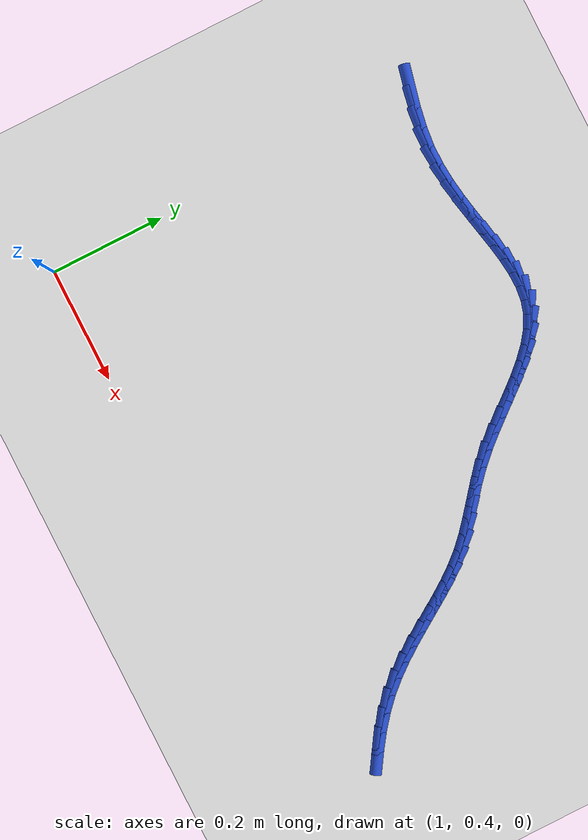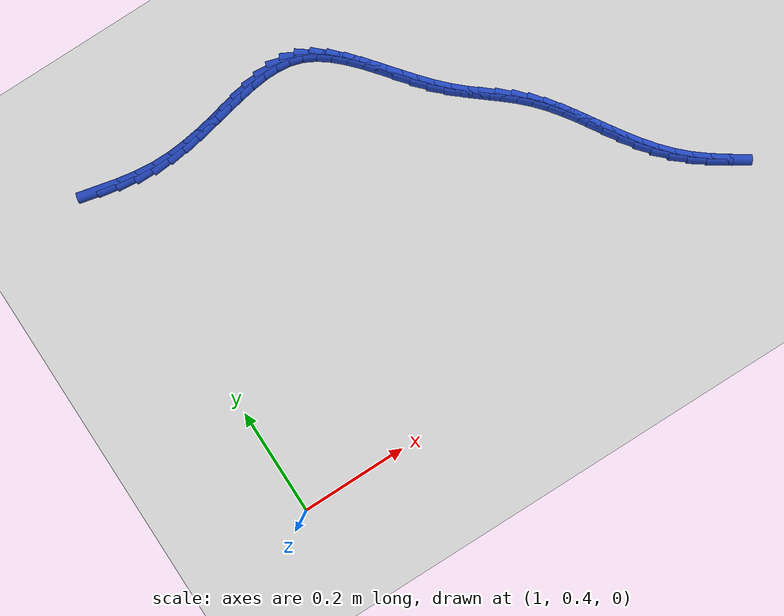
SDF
<sdf version="1.6">
 <world name="default">
  <model name="ground_plane">
   <static>1</static>
   <link name="link">
    <collision name="collision">
     <geometry><plane><normal>0 0 1</normal><size>100 100</size></plane></geometry>
     <surface><friction><ode><mu>100</mu><mu2>50</mu2></ode></friction></surface>
    </collision>
    <visual name="visual">
     <cast_shadows>0</cast_shadows>
     <geometry><plane><normal>0 0 1</normal><size>100 100</size></plane></geometry>
     <material>
      <script><uri>file://media/materials/scripts/gazebo.material</uri><name>Gazebo/WhiteGlow</name></script>
     </material>
    </visual>
   </link>
  </model>
  <model name="line">
   <link name="link_60">
    <pose>0.9963995045907268 1.063491880900496 0.01 0 1.57 -0.22296661815476587</pose>
    <collision name="collision">
     <geometry><cylinder><radius>0.01</radius><length>0.08</length></cylinder></geometry>
    </collision>
    <visual name="visual">
     <material>
      <script><name>Gazebo/Blue</name><uri>file://media/materials/scripts/gazebo.material</uri></script>
     </material>
     <geometry><cylinder><radius>0.01</radius><length>0.08</length></cylinder></geometry>
    </visual>
   </link>
   <link name="link_61">
    <pose>1.0306129793076757 1.0557344386117689 0.01 0 1.57 -0.17338200599537557</pose>
    <collision name="collision">
     <geometry><cylinder><radius>0.01</radius><length>0.08</length></cylinder></geometry>
    </collision>
    <visual name="visual">
     <material>
      <script><name>Gazebo/Blue</name><uri>file://media/materials/scripts/gazebo.material</uri></script>
     </material>
     <geometry><cylinder><radius>0.01</radius><length>0.08</length></cylinder></geometry>
    </visual>
   </link>
   <link name="link_62">
    <pose>1.0649228635529442 1.0497253877024086 0.01 0 1.57 -0.09835949726790229</pose>
    <collision name="collision">
     <geometry><cylinder><radius>0.01</radius><length>0.08</length></cylinder></geometry>
    </collision>
    <visual name="visual">
     <material>
      <script><name>Gazebo/Blue</name><uri>file://media/materials/scripts/gazebo.material</uri></script>
     </material>
     <geometry><cylinder><radius>0.01</radius><length>0.08</length></cylinder></geometry>
    </visual>
   </link>
   <link name="link_63">
    <pose>1.0989761914190073 1.046365075950536 0.01 0 1.57 -0.00280902387903092</pose>
    <collision name="collision">
     <geometry><cylinder><radius>0.01</radius><length>0.08</length></cylinder></geometry>
    </collision>
    <visual name="visual">
     <material>
      <script><name>Gazebo/Blue</name><uri>file://media/materials/scripts/gazebo.material</uri></script>
     </material>
     <geometry><cylinder><radius>0.01</radius><length>0.08</length></cylinder></geometry>
    </visual>
   </link>
   <link name="link_64">
    <pose>1.1324685399668926 1.0462709948962476 0.01 0 1.57 0.08136396943552691</pose>
    <collision name="collision">
     <geometry><cylinder><radius>0.01</radius><length>0.08</length></cylinder></geometry>
    </collision>
    <visual name="visual">
     <material>
      <script><name>Gazebo/Blue</name><uri>file://media/materials/scripts/gazebo.material</uri></script>
     </material>
     <geometry><cylinder><radius>0.01</radius><length>0.08</length></cylinder></geometry>
    </visual>
   </link>
   <link name="link_65">
    <pose>1.1652865864795063 1.048947109415471 0.01 0 1.57 0.14476173925852065</pose>
    <collision name="collision">
     <geometry><cylinder><radius>0.01</radius><length>0.08</length></cylinder></geometry>
    </collision>
    <visual name="visual">
     <material>
      <script><name>Gazebo/Blue</name><uri>file://media/materials/scripts/gazebo.material</uri></script>
     </material>
     <geometry><cylinder><radius>0.01</radius><length>0.08</length></cylinder></geometry>
    </visual>
   </link>
   <link name="link_66">
    <pose>1.1973640274915764 1.0536234067292674 0.01 0 1.57 0.18668350352479565</pose>
    <collision name="collision">
     <geometry><cylinder><radius>0.01</radius><length>0.08</length></cylinder></geometry>
    </collision>
    <visual name="visual">
     <material>
      <script><name>Gazebo/Blue</name><uri>file://media/materials/scripts/gazebo.material</uri></script>
     </material>
     <geometry><cylinder><radius>0.01</radius><length>0.08</length></cylinder></geometry>
    </visual>
   </link>
   <link name="link_67">
    <pose>1.2286345595378292 1.0595298740586978 0.01 0 1.57 0.20646240324357826</pose>
    <collision name="collision">
     <geometry><cylinder><radius>0.01</radius><length>0.08</length></cylinder></geometry>
    </collision>
    <visual name="visual">
     <material>
      <script><name>Gazebo/Blue</name><uri>file://media/materials/scripts/gazebo.material</uri></script>
     </material>
     <geometry><cylinder><radius>0.01</radius><length>0.08</length></cylinder></geometry>
    </visual>
   </link>
   <link name="link_68">
    <pose>1.2590318791529929 1.0658964986248238 0.01 0 1.57 0.20278229673842127</pose>
    <collision name="collision">
     <geometry><cylinder><radius>0.01</radius><length>0.08</length></cylinder></geometry>
    </collision>
    <visual name="visual">
     <material>
      <script><name>Gazebo/Blue</name><uri>file://media/materials/scripts/gazebo.material</uri></script>
     </material>
     <geometry><cylinder><radius>0.01</radius><length>0.08</length></cylinder></geometry>
    </visual>
   </link>
   <link name="link_69">
    <pose>1.288489682871794 1.0719532676487058 0.01 0 1.57 0.1731707571952304</pose>
    <collision name="collision">
     <geometry><cylinder><radius>0.01</radius><length>0.08</length></cylinder></geometry>
    </collision>
    <visual name="visual">
     <material>
      <script><name>Gazebo/Blue</name><uri>file://media/materials/scripts/gazebo.material</uri></script>
     </material>
     <geometry><cylinder><radius>0.01</radius><length>0.08</length></cylinder></geometry>
    </visual>
   </link>
   <link name="link_70">
    <pose>1.316941667228961 1.0769301683514052 0.01 0 1.57 0.11371602879071308</pose>
    <collision name="collision">
     <geometry><cylinder><radius>0.01</radius><length>0.08</length></cylinder></geometry>
    </collision>
    <visual name="visual">
     <material>
      <script><name>Gazebo/Blue</name><uri>file://media/materials/scripts/gazebo.material</uri></script>
     </material>
     <geometry><cylinder><radius>0.01</radius><length>0.08</length></cylinder></geometry>
    </visual>
   </link>
   <link name="link_71">
    <pose>1.3443215287592207 1.0800571879539838 0.01 0 1.57 0.019322975322153275</pose>
    <collision name="collision">
     <geometry><cylinder><radius>0.01</radius><length>0.08</length></cylinder></geometry>
    </collision>
    <visual name="visual">
     <material>
      <script><name>Gazebo/Blue</name><uri>file://media/materials/scripts/gazebo.material</uri></script>
     </material>
     <geometry><cylinder><radius>0.01</radius><length>0.08</length></cylinder></geometry>
    </visual>
   </link>
   <link name="link_72">
    <pose>1.3705629639973003 1.080564313677502 0.01 0 1.57 -0.11463735208167723</pose>
    <collision name="collision">
     <geometry><cylinder><radius>0.01</radius><length>0.08</length></cylinder></geometry>
    </collision>
    <visual name="visual">
     <material>
      <script><name>Gazebo/Blue</name><uri>file://media/materials/scripts/gazebo.material</uri></script>
     </material>
     <geometry><cylinder><radius>0.01</radius><length>0.08</length></cylinder></geometry>
    </visual>
   </link>
   <link name="link_73">
    <pose>1.3955996694779278 1.0776815327430216 0.01 0 1.57 -0.28809482472202963</pose>
    <collision name="collision">
     <geometry><cylinder><radius>0.01</radius><length>0.08</length></cylinder></geometry>
    </collision>
    <visual name="visual">
     <material>
      <script><name>Gazebo/Blue</name><uri>file://media/materials/scripts/gazebo.material</uri></script>
     </material>
     <geometry><cylinder><radius>0.01</radius><length>0.08</length></cylinder></geometry>
    </visual>
   </link>
   <link name="link_74">
    <pose>1.4193653420786632 1.0706388339651929 0.01 0 1.57 -0.4795923687654513</pose>
    <collision name="collision">
     <geometry><cylinder><radius>0.01</radius><length>0.08</length></cylinder></geometry>
    </collision>
    <visual name="visual">
     <material>
      <script><name>Gazebo/Blue</name><uri>file://media/materials/scripts/gazebo.material</uri></script>
     </material>
     <geometry><cylinder><radius>0.01</radius><length>0.08</length></cylinder></geometry>
    </visual>
   </link>
   <link name="link_75">
    <pose>1.4418532350245061 1.0589430418515193 0.01 0 1.57 -0.6351467838412366</pose>
    <collision name="collision">
     <geometry><cylinder><radius>0.01</radius><length>0.08</length></cylinder></geometry>
    </collision>
    <visual name="visual">
     <material>
      <script><name>Gazebo/Blue</name><uri>file://media/materials/scripts/gazebo.material</uri></script>
     </material>
     <geometry><cylinder><radius>0.01</radius><length>0.08</length></cylinder></geometry>
    </visual>
   </link>
   <link name="link_76">
    <pose>1.4632821403325666 1.0431493525854616 0.01 0 1.57 -0.7463087668512707</pose>
    <collision name="collision">
     <geometry><cylinder><radius>0.01</radius><length>0.08</length></cylinder></geometry>
    </collision>
    <visual name="visual">
     <material>
      <script><name>Gazebo/Blue</name><uri>file://media/materials/scripts/gazebo.material</uri></script>
     </material>
     <geometry><cylinder><radius>0.01</radius><length>0.08</length></cylinder></geometry>
    </visual>
   </link>
   <link name="link_77">
    <pose>1.4839242302619464 1.024061089660365 0.01 0 1.57 -0.8202000287012099</pose>
    <collision name="collision">
     <geometry><cylinder><radius>0.01</radius><length>0.08</length></cylinder></geometry>
    </collision>
    <visual name="visual">
     <material>
      <script><name>Gazebo/Blue</name><uri>file://media/materials/scripts/gazebo.material</uri></script>
     </material>
     <geometry><cylinder><radius>0.01</radius><length>0.08</length></cylinder></geometry>
    </visual>
   </link>
   <link name="link_78">
    <pose>1.5040516770717498 1.002481576569575 0.01 0 1.57 -0.8636223327757733</pose>
    <collision name="collision">
     <geometry><cylinder><radius>0.01</radius><length>0.08</length></cylinder></geometry>
    </collision>
    <visual name="visual">
     <material>
      <script><name>Gazebo/Blue</name><uri>file://media/materials/scripts/gazebo.material</uri></script>
     </material>
     <geometry><cylinder><radius>0.01</radius><length>0.08</length></cylinder></geometry>
    </visual>
   </link>
   <link name="link_79">
    <pose>1.523936653021077 0.9792141368064365 0.01 0 1.57 -0.8812613791826182</pose>
    <collision name="collision">
     <geometry><cylinder><radius>0.01</radius><length>0.08</length></cylinder></geometry>
    </collision>
    <visual name="visual">
     <material>
      <script><name>Gazebo/Blue</name><uri>file://media/materials/scripts/gazebo.material</uri></script>
     </material>
     <geometry><cylinder><radius>0.01</radius><length>0.08</length></cylinder></geometry>
    </visual>
   </link>
   <link name="link_80">
    <pose>1.5438513303690324 0.9550620938642955 0.01 0 1.57 -0.875519704956702</pose>
    <collision name="collision">
     <geometry><cylinder><radius>0.01</radius><length>0.08</length></cylinder></geometry>
    </collision>
    <visual name="visual">
     <material>
      <script><name>Gazebo/Blue</name><uri>file://media/materials/scripts/gazebo.material</uri></script>
     </material>
     <geometry><cylinder><radius>0.01</radius><length>0.08</length></cylinder></geometry>
    </visual>
   </link>
   <link name="link_81">
    <pose>1.5640678813747173 0.930828771236496 0.01 0 1.57 -0.8467334735301223</pose>
    <collision name="collision">
     <geometry><cylinder><radius>0.01</radius><length>0.08</length></cylinder></geometry>
    </collision>
    <visual name="visual">
     <material>
      <script><name>Gazebo/Blue</name><uri>file://media/materials/scripts/gazebo.material</uri></script>
     </material>
     <geometry><cylinder><radius>0.01</radius><length>0.08</length></cylinder></geometry>
    </visual>
   </link>
   <link name="link_82">
    <pose>1.5848584782972348 0.9073174924163846 0.01 0 1.57 -0.7934501923325086</pose>
    <collision name="collision">
     <geometry><cylinder><radius>0.01</radius><length>0.08</length></cylinder></geometry>
    </collision>
    <visual name="visual">
     <material>
      <script><name>Gazebo/Blue</name><uri>file://media/materials/scripts/gazebo.material</uri></script>
     </material>
     <geometry><cylinder><radius>0.01</radius><length>0.08</length></cylinder></geometry>
    </visual>
   </link>
   <link name="link_83">
    <pose>1.6064945206953598 0.885330185959581 0.01 0 1.57 -0.7281467358941833</pose>
    <collision name="collision">
     <geometry><cylinder><radius>0.01</radius><length>0.08</length></cylinder></geometry>
    </collision>
    <visual name="visual">
     <material>
      <script><name>Gazebo/Blue</name><uri>file://media/materials/scripts/gazebo.material</uri></script>
     </material>
     <geometry><cylinder><radius>0.01</radius><length>0.08</length></cylinder></geometry>
    </visual>
   </link>
   <link name="link_84">
    <pose>1.6290157536660645 0.8652505800709968 0.01 0 1.57 -0.6873212385693075</pose>
    <collision name="collision">
     <geometry><cylinder><radius>0.01</radius><length>0.08</length></cylinder></geometry>
    </collision>
    <visual name="visual">
     <material>
      <script><name>Gazebo/Blue</name><uri>file://media/materials/scripts/gazebo.material</uri></script>
     </material>
     <geometry><cylinder><radius>0.01</radius><length>0.08</length></cylinder></geometry>
    </visual>
   </link>
   <link name="link_85">
    <pose>1.651906945276666 0.846460515978572 0.01 0 1.57 -0.6783346617373449</pose>
    <collision name="collision">
     <geometry><cylinder><radius>0.01</radius><length>0.08</length></cylinder></geometry>
    </collision>
    <visual name="visual">
     <material>
      <script><name>Gazebo/Blue</name><uri>file://media/materials/scripts/gazebo.material</uri></script>
     </material>
     <geometry><cylinder><radius>0.01</radius><length>0.08</length></cylinder></geometry>
    </visual>
   </link>
   <link name="link_86">
    <pose>1.6745714836347434 0.8281949215832276 0.01 0 1.57 -0.7029267772788506</pose>
    <collision name="collision">
     <geometry><cylinder><radius>0.01</radius><length>0.08</length></cylinder></geometry>
    </collision>
    <visual name="visual">
     <material>
      <script><name>Gazebo/Blue</name><uri>file://media/materials/scripts/gazebo.material</uri></script>
     </material>
     <geometry><cylinder><radius>0.01</radius><length>0.08</length></cylinder></geometry>
    </visual>
   </link>
   <link name="link_87">
    <pose>1.6964127568478773 0.8096887247858839 0.01 0 1.57 -0.7625897713675887</pose>
    <collision name="collision">
     <geometry><cylinder><radius>0.01</radius><length>0.08</length></cylinder></geometry>
    </collision>
    <visual name="visual">
     <material>
      <script><name>Gazebo/Blue</name><uri>file://media/materials/scripts/gazebo.material</uri></script>
     </material>
     <geometry><cylinder><radius>0.01</radius><length>0.08</length></cylinder></geometry>
    </visual>
   </link>
   <link name="link_88">
    <pose>1.7168348713059405 0.790177581695829 0.01 0 1.57 -0.843900372784086</pose>
    <collision name="collision">
     <geometry><cylinder><radius>0.01</radius><length>0.08</length></cylinder></geometry>
    </collision>
    <visual name="visual">
     <material>
      <script><name>Gazebo/Blue</name><uri>file://media/materials/scripts/gazebo.material</uri></script>
     </material>
     <geometry><cylinder><radius>0.01</radius><length>0.08</length></cylinder></geometry>
    </visual>
   </link>
   <link name="link_89">
    <pose>1.7355146159177919 0.7691735991911116 0.01 0 1.57 -0.910955286009056</pose>
    <collision name="collision">
     <geometry><cylinder><radius>0.01</radius><length>0.08</length></cylinder></geometry>
    </collision>
    <visual name="visual">
     <material>
      <script><name>Gazebo/Blue</name><uri>file://media/materials/scripts/gazebo.material</uri></script>
     </material>
     <geometry><cylinder><radius>0.01</radius><length>0.08</length></cylinder></geometry>
    </visual>
   </link>
   <link name="link_90">
    <pose>1.7528108304997605 0.7468803604439184 0.01 0 1.57 -0.95760517166725</pose>
    <collision name="collision">
     <geometry><cylinder><radius>0.01</radius><length>0.08</length></cylinder></geometry>
    </collision>
    <visual name="visual">
     <material>
      <script><name>Gazebo/Blue</name><uri>file://media/materials/scripts/gazebo.material</uri></script>
     </material>
     <geometry><cylinder><radius>0.01</radius><length>0.08</length></cylinder></geometry>
    </visual>
   </link>
   <link name="link_91">
    <pose>1.7691872550705656 0.7236077984639742 0.01 0 1.57 -0.983978102850983</pose>
    <collision name="collision">
     <geometry><cylinder><radius>0.01</radius><length>0.08</length></cylinder></geometry>
    </collision>
    <visual name="visual">
     <material>
      <script><name>Gazebo/Blue</name><uri>file://media/materials/scripts/gazebo.material</uri></script>
     </material>
     <geometry><cylinder><radius>0.01</radius><length>0.08</length></cylinder></geometry>
    </visual>
   </link>
   <link name="link_92">
    <pose>1.785107629648926 0.6996658462610038 0.01 0 1.57 -0.9906078275194107</pose>
    <collision name="collision">
     <geometry><cylinder><radius>0.01</radius><length>0.08</length></cylinder></geometry>
    </collision>
    <visual name="visual">
     <material>
      <script><name>Gazebo/Blue</name><uri>file://media/materials/scripts/gazebo.material</uri></script>
     </material>
     <geometry><cylinder><radius>0.01</radius><length>0.08</length></cylinder></geometry>
    </visual>
   </link>
   <link name="link_93">
    <pose>1.801035694253562 0.6753644368447325 0.01 0 1.57 -0.9781021345196684</pose>
    <collision name="collision">
     <geometry><cylinder><radius>0.01</radius><length>0.08</length></cylinder></geometry>
    </collision>
    <visual name="visual">
     <material>
      <script><name>Gazebo/Blue</name><uri>file://media/materials/scripts/gazebo.material</uri></script>
     </material>
     <geometry><cylinder><radius>0.01</radius><length>0.08</length></cylinder></geometry>
    </visual>
   </link>
   <link name="link_94">
    <pose>1.8174351889031912 0.6510135032248858 0.01 0 1.57 -0.9470607423933891</pose>
    <collision name="collision">
     <geometry><cylinder><radius>0.01</radius><length>0.08</length></cylinder></geometry>
    </collision>
    <visual name="visual">
     <material>
      <script><name>Gazebo/Blue</name><uri>file://media/materials/scripts/gazebo.material</uri></script>
     </material>
     <geometry><cylinder><radius>0.01</radius><length>0.08</length></cylinder></geometry>
    </visual>
   </link>
   <link name="link_95">
    <pose>1.8347698536165338 0.6269229784111886 0.01 0 1.57 -0.8981997059693798</pose>
    <collision name="collision">
     <geometry><cylinder><radius>0.01</radius><length>0.08</length></cylinder></geometry>
    </collision>
    <visual name="visual">
     <material>
      <script><name>Gazebo/Blue</name><uri>file://media/materials/scripts/gazebo.material</uri></script>
     </material>
     <geometry><cylinder><radius>0.01</radius><length>0.08</length></cylinder></geometry>
    </visual>
   </link>
   <link name="link_96">
    <pose>1.853503428412309 0.6034027954133658 0.01 0 1.57 -0.8326309552382755</pose>
    <collision name="collision">
     <geometry><cylinder><radius>0.01</radius><length>0.08</length></cylinder></geometry>
    </collision>
    <visual name="visual">
     <material>
      <script><name>Gazebo/Blue</name><uri>file://media/materials/scripts/gazebo.material</uri></script>
     </material>
     <geometry><cylinder><radius>0.01</radius><length>0.08</length></cylinder></geometry>
    </visual>
   </link>
   <link name="link_97">
    <pose>1.8740996533092353 0.5807628872411429 0.01 0 1.57 -0.7522805844675242</pose>
    <collision name="collision">
     <geometry><cylinder><radius>0.01</radius><length>0.08</length></cylinder></geometry>
    </collision>
    <visual name="visual">
     <material>
      <script><name>Gazebo/Blue</name><uri>file://media/materials/scripts/gazebo.material</uri></script>
     </material>
     <geometry><cylinder><radius>0.01</radius><length>0.08</length></cylinder></geometry>
    </visual>
   </link>
   <link name="link_98">
    <pose>1.8970202843000696 0.5593122622822257 0.01 0 1.57 -0.67075027537022</pose>
    <collision name="collision">
     <geometry><cylinder><radius>0.01</radius><length>0.08</length></cylinder></geometry>
    </collision>
    <visual name="visual">
     <material>
      <script><name>Gazebo/Blue</name><uri>file://media/materials/scripts/gazebo.material</uri></script>
     </material>
     <geometry><cylinder><radius>0.01</radius><length>0.08</length></cylinder></geometry>
    </visual>
   </link>
   <link name="link_99">
    <pose>1.9223734535218504 0.5391951284581807 0.01 0 1.57 -0.6106774531517228</pose>
    <collision name="collision">
     <geometry><cylinder><radius>0.01</radius><length>0.08</length></cylinder></geometry>
    </collision>
    <visual name="visual">
     <material>
      <script><name>Gazebo/Blue</name><uri>file://media/materials/scripts/gazebo.material</uri></script>
     </material>
     <geometry><cylinder><radius>0.01</radius><length>0.08</length></cylinder></geometry>
    </visual>
   </link>
   <link name="link_100">
    <pose>1.9495089171118882 0.5202022652771817 0.01 0 1.57 -0.5717027698837208</pose>
    <collision name="collision">
     <geometry><cylinder><radius>0.01</radius><length>0.08</length></cylinder></geometry>
    </collision>
    <visual name="visual">
     <material>
      <script><name>Gazebo/Blue</name><uri>file://media/materials/scripts/gazebo.material</uri></script>
     </material>
     <geometry><cylinder><radius>0.01</radius><length>0.08</length></cylinder></geometry>
    </visual>
   </link>
  </model>
 </world>
</sdf>
